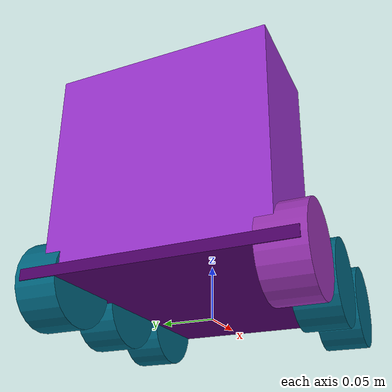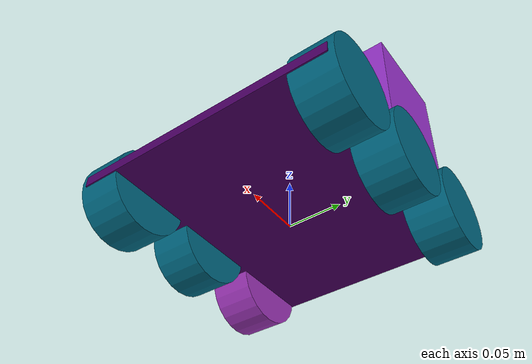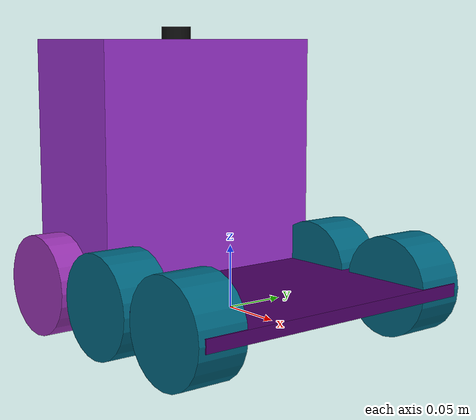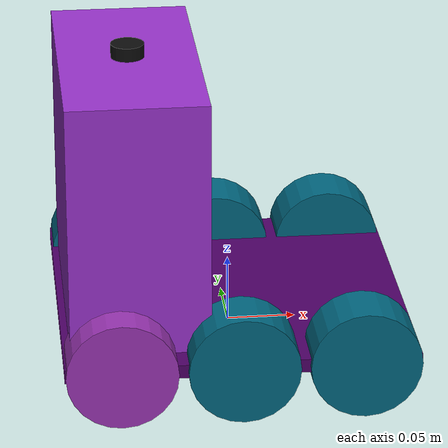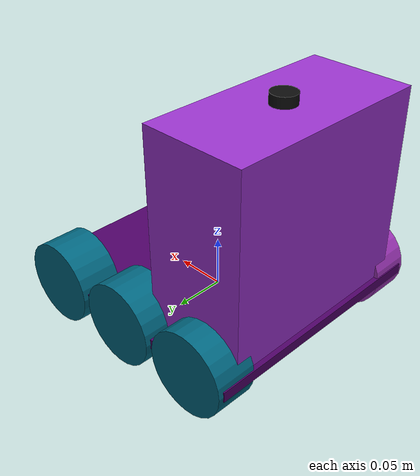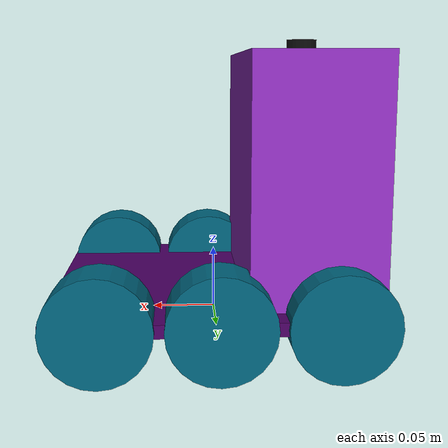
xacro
<?xml version="1.0"?>
<robot xmlns:xacro="http://www.ros.org/wiki/xacro"  name="robot">

    <xacro:arg name="use_ros2_control" default="true"/>
    <xacro:arg name="sim_mode" default="true"/>

    <xacro:include filename="robot_core.xacro" />

    <xacro:include filename="ros2_control.xacro" />
    <xacro:include filename="lidar.xacro" />

</robot>

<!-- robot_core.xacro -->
<robot xmlns:xacro="http://www.ros.org/wiki/xacro" >

  <!-- ===== BASE LINK ===== -->
  <link name="base_link"/>
  <!-- base_footprint -->
  <joint name="base_footprint_joint" type="fixed">
    <parent link="base_link"/>
    <child  link="base_footprint"/>
    <origin xyz="0 0 0" rpy="0 0 0"/>
  </joint>
  <link name="base_footprint"/>

  <!-- ===== CHASSIS ===== -->
  <!-- from UGV02 DXF top view: 252.336 x 239.796 x 10 mm -->
  <link name="chassis-link">
    <visual>
      <origin xyz="0 0 0" rpy="0 0 0"/>
      <geometry>
        <box size="0.252336 0.239796 0.01"/>
      </geometry>
      <material name="brown">
        <color rgba="0.3 0 0.4 1"/>
      </material>
    </visual>
    <collision>
      <origin xyz="0 0 0" rpy="0 0 0"/>
      <geometry>
        <box size="0.252336 0.239796 0.01"/>
      </geometry>
    </collision>
    <inertial>
      <!-- you can tune mass later if you have a measured value -->
      <mass value="0.6"/>
      <inertia ixx="0.00065" ixy="0" ixz="0" iyy="0.00073" iyz="0" izz="0.00136"/>
    </inertial>
  </link>

  <!-- original vertical offset kept -->
  <joint name="joint-base-chassis" type="fixed">
    <parent link="base_link"/>
    <child  link="chassis-link"/>
    <origin xyz="0 0 0.02" rpy="0 0 0"/>
  </joint>

  <material name="blue">
    <color rgba="0 0.4 0.5 1"/>
  </material>

  <!-- ===== WHEEL TEMPLATE (values inlined for clarity) =====
       wheel radius from DXF arcs ~39.65 mm -> radius="0.03965"
       wheel length (tread width) assumed 0.04 m (adjust if you know exact)
  -->

  <!-- ========== RIGHT SIDE (front, mid, rear) ========== -->
  <!-- FRONT RIGHT (existing) -->
  <link name="front-right-wheel-link">
    <visual>
      <origin xyz="0 0 0" rpy="1.5707963267948966 0 0"/>
      <geometry><cylinder length="0.04" radius="0.03965"/></geometry>
      <material name="blue"/>
    </visual>
    <collision>
      <origin xyz="0 0 0" rpy="1.5707963267948966 0 0"/>
      <geometry><cylinder length="0.04" radius="0.03965"/></geometry>
    </collision>
    <inertial>
      <origin xyz="0 0 0" rpy="1.5707963267948966 0 0"/>
      <mass value="0.15"/>
      <inertia ixx="3.4e-05" ixy="0" ixz="0" iyy="3.4e-05" iyz="0" izz="6.3e-05"/>
    </inertial>
  </link>
  <joint name="joint-chassis-front-right-wheel" type="continuous">
    <parent link="chassis-link"/>
    <child  link="front-right-wheel-link"/>
    <origin xyz="0.086 0.105 0" rpy="0 0 0"/>
    <axis xyz="0 1 0"/>
  </joint>

  <!-- MID RIGHT (NEW) -->
  <link name="mid-right-wheel-link">
    <visual>
      <origin xyz="0 0 0" rpy="1.5707963267948966 0 0"/>
      <geometry><cylinder length="0.04" radius="0.03965"/></geometry>
      <material name="blue"/>
    </visual>
    <collision>
      <origin xyz="0 0 0" rpy="1.5707963267948966 0 0"/>
      <geometry><cylinder length="0.04" radius="0.03965"/></geometry>
    </collision>
    <inertial>
      <origin xyz="0 0 0" rpy="1.5707963267948966 0 0"/>
      <mass value="0.15"/>
      <inertia ixx="3.4e-05" ixy="0" ixz="0" iyy="3.4e-05" iyz="0" izz="6.3e-05"/>
    </inertial>
  </link>
  <joint name="joint-chassis-mid-right-wheel" type="continuous">
    <parent link="chassis-link"/>
    <child  link="mid-right-wheel-link"/>
    <origin xyz="0.000 0.105 0" rpy="0 0 0"/>
    <axis xyz="0 1 0"/>
  </joint>

  <!-- REAR RIGHT (existing “rare-right-wheel-link”) -->
  <link name="rare-right-wheel-link">
    <visual>
      <origin xyz="0 0 0" rpy="1.5707963267948966 0 0"/>
      <geometry><cylinder length="0.04" radius="0.03965"/></geometry>
      <material name="blue"/>
    </visual>
    <collision>
      <origin xyz="0 0 0" rpy="1.5707963267948966 0 0"/>
      <geometry><cylinder length="0.04" radius="0.03965"/></geometry>
    </collision>
    <inertial>
      <origin xyz="0 0 0" rpy="1.5707963267948966 0 0"/>
      <mass value="0.15"/>
      <inertia ixx="3.4e-05" ixy="0" ixz="0" iyy="3.4e-05" iyz="0" izz="6.3e-05"/>
    </inertial>
  </link>
  <joint name="joint-chassis-rare-right-wheel" type="continuous">
    <parent link="chassis-link"/>
    <child  link="rare-right-wheel-link"/>
    <origin xyz="-0.086 0.105 0" rpy="0 0 0"/>
    <axis xyz="0 1 0"/>
  </joint>

  <!-- ========== LEFT SIDE (front, mid, rear) ========== -->
  <!-- FRONT LEFT (existing) -->
  <link name="front-left-wheel-link">
    <visual>
      <origin xyz="0 0 0" rpy="1.5707963267948966 0 0"/>
      <geometry><cylinder length="0.04" radius="0.03965"/></geometry>
      <material name="blue"/>
    </visual>
    <collision>
      <origin xyz="0 0 0" rpy="1.5707963267948966 0 0"/>
      <geometry><cylinder length="0.04" radius="0.03965"/></geometry>
    </collision>
    <inertial>
      <origin xyz="0 0 0" rpy="1.5707963267948966 0 0"/>
      <mass value="0.15"/>
      <inertia ixx="3.4e-05" ixy="0" ixz="0" iyy="3.4e-05" iyz="0" izz="6.3e-05"/>
    </inertial>
  </link>
  <joint name="joint-chassis-front-left-wheel" type="continuous">
    <parent link="chassis-link"/>
    <child  link="front-left-wheel-link"/>
    <origin xyz="0.086 -0.105 0" rpy="0 0 0"/>
    <axis xyz="0 1 0"/>
  </joint>

  <!-- MID LEFT (NEW) -->
  <link name="mid-left-wheel-link">
    <visual>
      <origin xyz="0 0 0" rpy="1.5707963267948966 0 0"/>
      <geometry><cylinder length="0.04" radius="0.03965"/></geometry>
      <material name="blue"/>
    </visual>
    <collision>
      <origin xyz="0 0 0" rpy="1.5707963267948966 0 0"/>
      <geometry><cylinder length="0.04" radius="0.03965"/></geometry>
    </collision>
    <inertial>
      <origin xyz="0 0 0" rpy="1.5707963267948966 0 0"/>
      <mass value="0.15"/>
      <inertia ixx="3.4e-05" ixy="0" ixz="0" iyy="3.4e-05" iyz="0" izz="6.3e-05"/>
    </inertial>
  </link>
  <joint name="joint-chassis-mid-left-wheel" type="continuous">
    <parent link="chassis-link"/>
    <child  link="mid-left-wheel-link"/>
    <origin xyz="0.000 -0.105 0" rpy="0 0 0"/>
    <axis xyz="0 1 0"/>
  </joint>

  <!-- REAR LEFT (existing “rare-left-wheel-link”) -->
  <link name="rare-left-wheel-link">
    <visual>
      <origin xyz="0 0 0" rpy="1.5707963267948966 0 0"/>
      <geometry><cylinder length="0.04" radius="0.03965"/></geometry>
    </visual>
    <collision>
      <origin xyz="0 0 0" rpy="1.5707963267948966 0 0"/>
      <geometry><cylinder length="0.04" radius="0.03965"/></geometry>
    </collision>
    <inertial>
      <origin xyz="0 0 0" rpy="1.5707963267948966 0 0"/>
      <mass value="0.15"/>
      <inertia ixx="3.4e-05" ixy="0" ixz="0" iyy="3.4e-05" iyz="0" izz="6.3e-05"/>
    </inertial>
  </link>
  <joint name="joint-chassis-rare-left-wheel" type="continuous">
    <parent link="chassis-link"/>
    <child  link="rare-left-wheel-link"/>
    <origin xyz="-0.086 -0.105 0" rpy="0 0 0"/>
    <axis xyz="0 1 0"/>
  </joint>

  <!-- ===== Gazebo material/friction (kept & extended) ===== -->
  <gazebo reference="chassis-link">
    <material>Gazebo/DarkGrey</material>
  </gazebo>

  <gazebo reference="front-right-wheel-link"><mu1>10000.0</mu1><mu2>10000.0</mu2><material>Gazebo/Purple</material></gazebo>
  <gazebo reference="mid-right-wheel-link"><mu1>10000.0</mu1><mu2>10000.0</mu2><material>Gazebo/Purple</material></gazebo>
  <gazebo reference="rare-right-wheel-link"><mu1>10000.0</mu1><mu2>10000.0</mu2><material>Gazebo/Purple</material></gazebo>

  <gazebo reference="front-left-wheel-link"><mu1>10000.0</mu1><mu2>10000.0</mu2><material>Gazebo/Purple</material></gazebo>
  <gazebo reference="mid-left-wheel-link"><mu1>10000.0</mu1><mu2>10000.0</mu2><material>Gazebo/Purple</material></gazebo>
  <gazebo reference="rare-left-wheel-link"><mu1>10000.0</mu1><mu2>10000.0</mu2><material>Gazebo/Purple</material></gazebo>
<!-- ===== Package box (rear cargo) =====
     Dimensions (mm): width=200, height=186, depth(extrude)=100
     URDF (m): X=0.10, Y=0.20, Z=0.186
-->
<link name="package_box_link">
  <visual>
    <origin xyz="0 0 0" rpy="0 0 0"/>
    <geometry>
      <box size="0.10 0.20 0.186"/>
    </geometry>
    <material name="cargo_purple">
      <color rgba="0.6 0.2 0.8 1"/>
    </material>
  </visual>

  <collision>
    <origin xyz="0 0 0" rpy="0 0 0"/>
    <geometry>
      <box size="0.10 0.20 0.186"/>
    </geometry>
  </collision>

  <inertial>
    <origin xyz="0 0 0" rpy="0 0 0"/>
    <mass value="0.5"/>
    <inertia ixx="0.003108" ixy="0" ixz="0"
             iyy="0.001858" iyz="0"
             izz="0.002083"/>
  </inertial>
</link>

<joint name="joint-chassis-package-box" type="fixed">
  <parent link="chassis-link"/>
  <child  link="package_box_link"/>
  <!-- Place at rear (−X), centered in Y, sitting on chassis top -->
  <!-- chassis: 0.252336 x 0.239796 x 0.01 -->
  <origin xyz="-0.0712 0 0.098" rpy="0 0 0"/>
</joint>

<!-- ===== Gazebo visualization & physics ===== -->
<gazebo reference="package_box_link">
  <material>Gazebo/Yellow</material>
  <mu1>1.0</mu1>       <!-- friction coefficient 1 -->
  <mu2>1.0</mu2>       <!-- friction coefficient 2 -->
  <kp>100000.0</kp>    <!-- contact stiffness -->
  <kd>1.0</kd>         <!-- damping -->
</gazebo>
</robot>

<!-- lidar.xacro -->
<robot xmlns:xacro="http://www.ros.org/wiki/xacro" >
  <!-- LiDAR puck mounted on TOP of the rear package box -->
<link name="laser_frame">
  <visual>
    <origin xyz="0 0 0" rpy="0 0 0"/>
    <geometry><cylinder radius="0.012" length="0.010"/></geometry>
    <material name="black"><color rgba="0.05 0.05 0.05 1"/></material>
  </visual>
  <collision>
    <origin xyz="0 0 0" rpy="0 0 0"/>
    <geometry><cylinder radius="0.012" length="0.010"/></geometry>
  </collision>
  <inertial>
    <mass value="0.03"/>
    <inertia ixx="3e-5" ixy="0" ixz="0" iyy="3e-5" iyz="0" izz="5e-5"/>
  </inertial>
</link>

<!-- IMPORTANT: parent is the package box, not the chassis -->
<joint name="joint-chassis-lidar" type="fixed">
  <parent link="package_box_link"/>
  <child  link="laser_frame"/>
  <!-- Centered on the box in X/Y; sits exactly on the top surface:
       z_offset = 0.186/2 + 0.010/2 = 0.098 -->
  <origin xyz="0 0 0.098" rpy="0 0 0"/>
</joint>

<!-- Gazebo sensor attached to the LiDAR link -->
<gazebo reference="laser_frame">
  <material>Gazebo/Black</material>
  <sensor name="laser" type="gpu_lidar">
    <pose>0 0 0 0 0 0</pose>
    <visualize>false</visualize>
    <update_rate>10</update_rate>
    <lidar>
      <scan>
        <horizontal>
          <samples>360</samples>
          <min_angle>-3.14159</min_angle>
          <max_angle> 3.14159</max_angle>
        </horizontal>
      </scan>
      <range>
        <min>0.3</min>
        <max>12.0</max>
      </range>
    </lidar>
    <topic>scan</topic>
    <gz_frame_id>laser_frame</gz_frame_id>
  </sensor>
</gazebo>

</robot>
